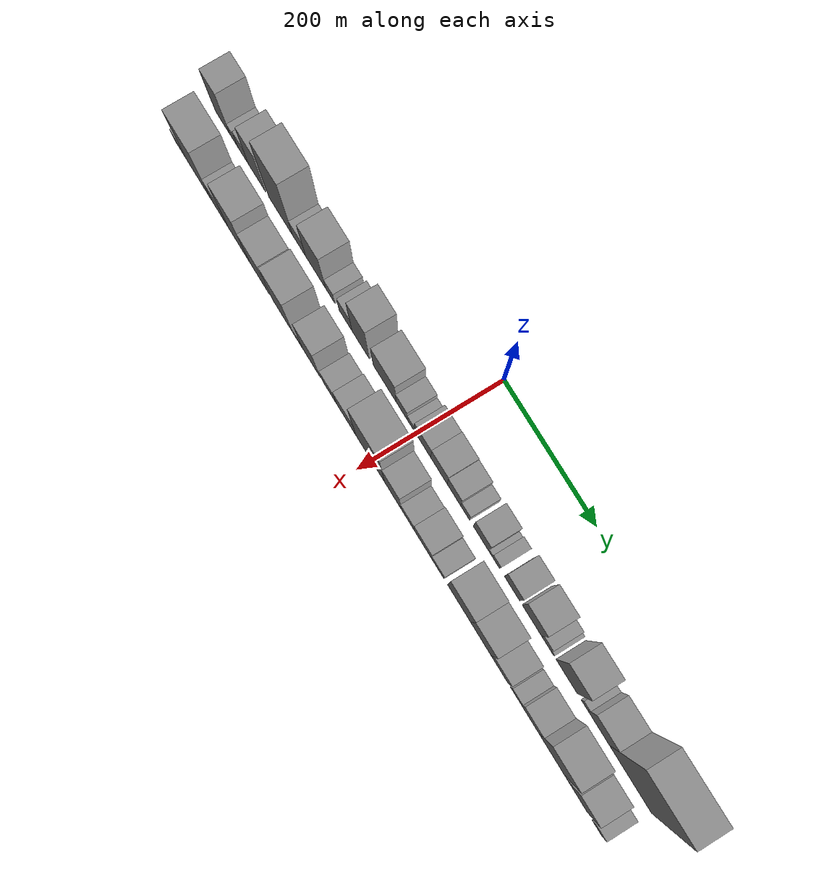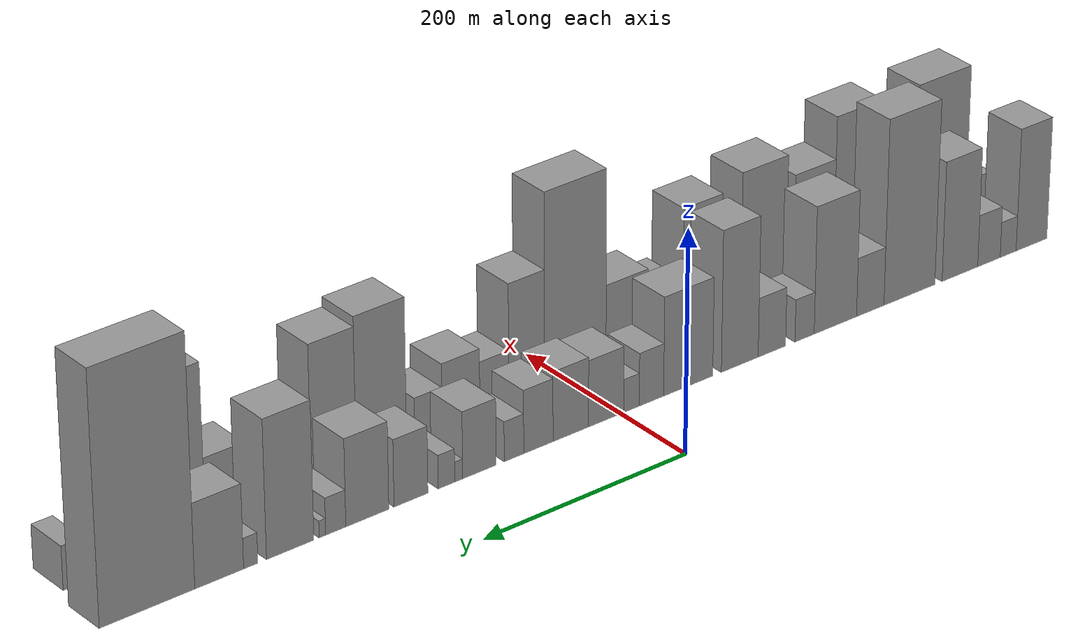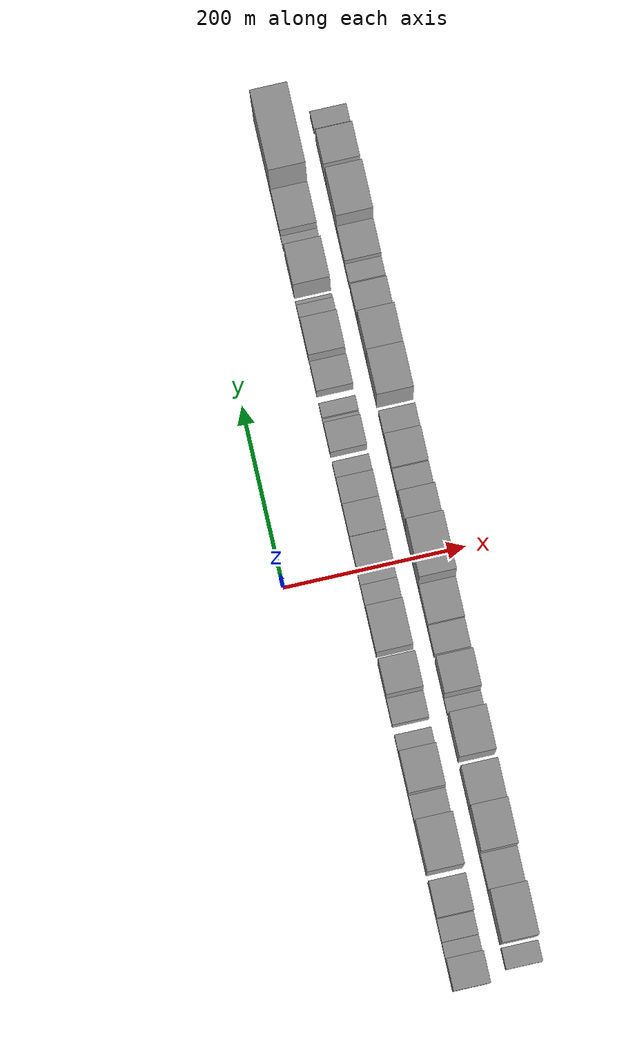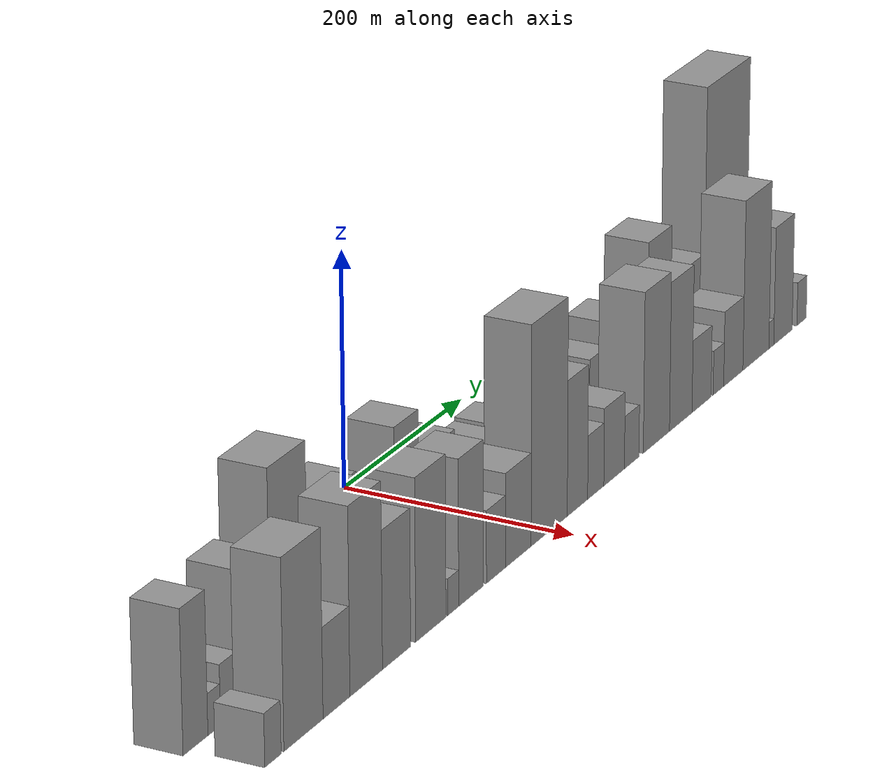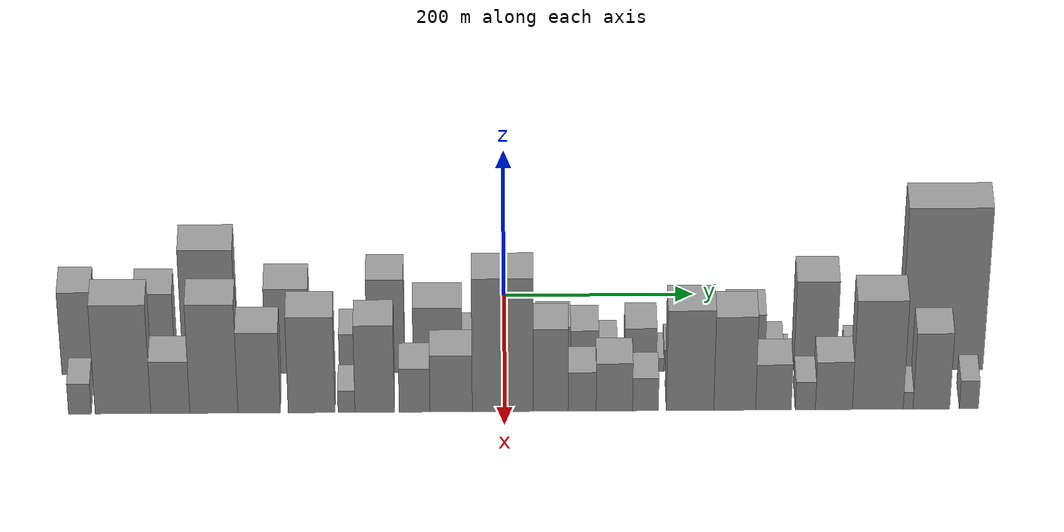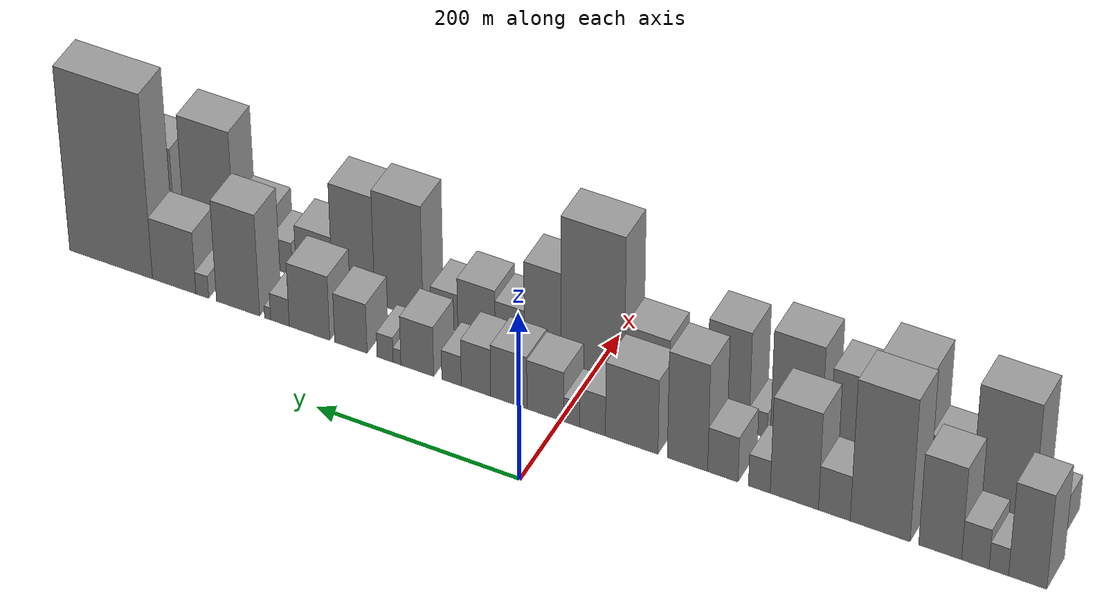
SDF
<sdf version="1.6">
 <world name="default">
  <scene>
   <sky><clouds><speed>12</speed></clouds></sky>
   <ambient>0.4 0.4 0.4 1</ambient>
   <background>0.7 0.7 0.7 1</background>
   <shadows>1</shadows>
  </scene>
  <gravity>0 0 -9.8066</gravity>
  <magnetic_field>6e-06 2.3e-05 -4.2e-05</magnetic_field>
  <physics default="0" name="default_physics" type="ode">
   <ode>
    <solver>
     <type>quick</type>
     <iters>10</iters>
     <sor>1.0</sor>
     <use_dynamic_moi_rescaling>0</use_dynamic_moi_rescaling>
    </solver>
    <constraints>
     <cfm>0</cfm>
     <erp>0.2</erp>
     <contact_max_correcting_vel>100</contact_max_correcting_vel>
     <contact_surface_layer>0.001</contact_surface_layer>
    </constraints>
   </ode>
   <max_step_size>0.004</max_step_size>
   <real_time_factor>1</real_time_factor>
   <real_time_update_rate>250</real_time_update_rate>
  </physics>
  <light name="sun" type="directional">
   <pose>0 0 10 0 0 0</pose>
   <diffuse>0.8 0.8 0.8 1</diffuse>
   <specular>0.2 0.2 0.2 1</specular>
   <attenuation>
    <range>1000</range>
    <constant>0.9</constant>
    <linear>0.01</linear>
    <quadratic>0.001</quadratic>
   </attenuation>
   <direction>-0.5 0.1 -0.9</direction>
  </light>
  <model name="building_1">
   <static>1</static>
   <pose>100.0000 -442.4921 0 0.000000 0.000000 0.000000</pose>
   <link name="link">
    <pose>0 0 57.00 0 0 0</pose>
    <collision name="collision"><geometry><box><size>40.0000 35.0159 114.0000</size></box></geometry></collision>
    <visual name="visual">
     <cast_shadows>0</cast_shadows>
     <geometry><box><size>40.0000 35.0159 114.0000</size></box></geometry>
     <material>
      <script>
       <uri>model://grey_wall/materials/scripts</uri>
       <uri>model://grey_wall/materials/textures</uri>
       <name>vrc/grey_wall</name>
      </script>
     </material>
    </visual>
   </link>
  </model>
  <model name="building_2">
   <static>1</static>
   <pose>100.0000 -415.9962 0 0.000000 0.000000 0.000000</pose>
   <link name="link">
    <pose>0 0 16.50 0 0 0</pose>
    <collision name="collision"><geometry><box><size>40.0000 17.9758 33.0000</size></box></geometry></collision>
    <visual name="visual">
     <cast_shadows>0</cast_shadows>
     <geometry><box><size>40.0000 17.9758 33.0000</size></box></geometry>
     <material>
      <script>
       <uri>model://grey_wall/materials/scripts</uri>
       <uri>model://grey_wall/materials/textures</uri>
       <name>vrc/grey_wall</name>
      </script>
     </material>
    </visual>
   </link>
  </model>
  <model name="building_3">
   <static>1</static>
   <pose>100.0000 -394.3339 0 0.000000 0.000000 0.000000</pose>
   <link name="link">
    <pose>0 0 24.00 0 0 0</pose>
    <collision name="collision"><geometry><box><size>40.0000 25.3489 48.0000</size></box></geometry></collision>
    <visual name="visual">
     <cast_shadows>0</cast_shadows>
     <geometry><box><size>40.0000 25.3489 48.0000</size></box></geometry>
     <material>
      <script>
       <uri>model://grey_wall/materials/scripts</uri>
       <uri>model://grey_wall/materials/textures</uri>
       <name>vrc/grey_wall</name>
      </script>
     </material>
    </visual>
   </link>
  </model>
  <model name="building_4">
   <static>1</static>
   <pose>100.0000 -361.7612 0 0.000000 0.000000 0.000000</pose>
   <link name="link">
    <pose>0 0 55.50 0 0 0</pose>
    <collision name="collision"><geometry><box><size>40.0000 39.7965 111.0000</size></box></geometry></collision>
    <visual name="visual">
     <cast_shadows>0</cast_shadows>
     <geometry><box><size>40.0000 39.7965 111.0000</size></box></geometry>
     <material>
      <script>
       <uri>model://grey_wall/materials/scripts</uri>
       <uri>model://grey_wall/materials/textures</uri>
       <name>vrc/grey_wall</name>
      </script>
     </material>
    </visual>
   </link>
  </model>
  <model name="building_5">
   <static>1</static>
   <pose>100.0000 -305.8351 0 0.000000 0.000000 0.000000</pose>
   <link name="link">
    <pose>0 0 85.50 0 0 0</pose>
    <collision name="collision"><geometry><box><size>40.0000 56.0557 171.0000</size></box></geometry></collision>
    <visual name="visual">
     <cast_shadows>0</cast_shadows>
     <geometry><box><size>40.0000 56.0557 171.0000</size></box></geometry>
     <material>
      <script>
       <uri>model://grey_wall/materials/scripts</uri>
       <uri>model://grey_wall/materials/textures</uri>
       <name>vrc/grey_wall</name>
      </script>
     </material>
    </visual>
   </link>
  </model>
  <model name="building_6">
   <static>1</static>
   <pose>100.0000 -262.8489 0 0.000000 0.000000 0.000000</pose>
   <link name="link">
    <pose>0 0 27.00 0 0 0</pose>
    <collision name="collision"><geometry><box><size>40.0000 29.9166 54.0000</size></box></geometry></collision>
    <visual name="visual">
     <cast_shadows>0</cast_shadows>
     <geometry><box><size>40.0000 29.9166 54.0000</size></box></geometry>
     <material>
      <script>
       <uri>model://grey_wall/materials/scripts</uri>
       <uri>model://grey_wall/materials/textures</uri>
       <name>vrc/grey_wall</name>
      </script>
     </material>
    </visual>
   </link>
  </model>
  <model name="building_7">
   <static>1</static>
   <pose>100.0000 -225.0278 0 0.000000 0.000000 0.000000</pose>
   <link name="link">
    <pose>0 0 58.50 0 0 0</pose>
    <collision name="collision"><geometry><box><size>40.0000 45.7256 117.0000</size></box></geometry></collision>
    <visual name="visual">
     <cast_shadows>0</cast_shadows>
     <geometry><box><size>40.0000 45.7256 117.0000</size></box></geometry>
     <material>
      <script>
       <uri>model://grey_wall/materials/scripts</uri>
       <uri>model://grey_wall/materials/textures</uri>
       <name>vrc/grey_wall</name>
      </script>
     </material>
    </visual>
   </link>
  </model>
  <model name="building_8">
   <static>1</static>
   <pose>100.0000 -191.8669 0 0.000000 0.000000 0.000000</pose>
   <link name="link">
    <pose>0 0 19.50 0 0 0</pose>
    <collision name="collision"><geometry><box><size>40.0000 20.5964 39.0000</size></box></geometry></collision>
    <visual name="visual">
     <cast_shadows>0</cast_shadows>
     <geometry><box><size>40.0000 20.5964 39.0000</size></box></geometry>
     <material>
      <script>
       <uri>model://grey_wall/materials/scripts</uri>
       <uri>model://grey_wall/materials/textures</uri>
       <name>vrc/grey_wall</name>
      </script>
     </material>
    </visual>
   </link>
  </model>
  <model name="building_9">
   <static>1</static>
   <pose>100.0000 -157.0296 0 0.000000 0.000000 0.000000</pose>
   <link name="link">
    <pose>0 0 27.00 0 0 0</pose>
    <collision name="collision"><geometry><box><size>40.0000 29.0781 54.0000</size></box></geometry></collision>
    <visual name="visual">
     <cast_shadows>0</cast_shadows>
     <geometry><box><size>40.0000 29.0781 54.0000</size></box></geometry>
     <material>
      <script>
       <uri>model://grey_wall/materials/scripts</uri>
       <uri>model://grey_wall/materials/textures</uri>
       <name>vrc/grey_wall</name>
      </script>
     </material>
    </visual>
   </link>
  </model>
  <model name="building_10">
   <static>1</static>
   <pose>100.0000 -123.1138 0 0.000000 0.000000 0.000000</pose>
   <link name="link">
    <pose>0 0 64.50 0 0 0</pose>
    <collision name="collision"><geometry><box><size>40.0000 38.7536 129.0000</size></box></geometry></collision>
    <visual name="visual">
     <cast_shadows>0</cast_shadows>
     <geometry><box><size>40.0000 38.7536 129.0000</size></box></geometry>
     <material>
      <script>
       <uri>model://grey_wall/materials/scripts</uri>
       <uri>model://grey_wall/materials/textures</uri>
       <name>vrc/grey_wall</name>
      </script>
     </material>
    </visual>
   </link>
  </model>
  <model name="building_11">
   <static>1</static>
   <pose>100.0000 -69.2807 0 0.000000 0.000000 0.000000</pose>
   <link name="link">
    <pose>0 0 45.00 0 0 0</pose>
    <collision name="collision"><geometry><box><size>40.0000 50.9125 90.0000</size></box></geometry></collision>
    <visual name="visual">
     <cast_shadows>0</cast_shadows>
     <geometry><box><size>40.0000 50.9125 90.0000</size></box></geometry>
     <material>
      <script>
       <uri>model://grey_wall/materials/scripts</uri>
       <uri>model://grey_wall/materials/textures</uri>
       <name>vrc/grey_wall</name>
      </script>
     </material>
    </visual>
   </link>
  </model>
  <model name="building_12">
   <static>1</static>
   <pose>100.0000 -31.2938 0 0.000000 0.000000 0.000000</pose>
   <link name="link">
    <pose>0 0 24.00 0 0 0</pose>
    <collision name="collision"><geometry><box><size>40.0000 25.0613 48.0000</size></box></geometry></collision>
    <visual name="visual">
     <cast_shadows>0</cast_shadows>
     <geometry><box><size>40.0000 25.0613 48.0000</size></box></geometry>
     <material>
      <script>
       <uri>model://grey_wall/materials/scripts</uri>
       <uri>model://grey_wall/materials/textures</uri>
       <name>vrc/grey_wall</name>
      </script>
     </material>
    </visual>
   </link>
  </model>
  <model name="building_13">
   <static>1</static>
   <pose>100.0000 -10.8633 0 0.000000 0.000000 0.000000</pose>
   <link name="link">
    <pose>0 0 15.00 0 0 0</pose>
    <collision name="collision"><geometry><box><size>40.0000 15.7997 30.0000</size></box></geometry></collision>
    <visual name="visual">
     <cast_shadows>0</cast_shadows>
     <geometry><box><size>40.0000 15.7997 30.0000</size></box></geometry>
     <material>
      <script>
       <uri>model://grey_wall/materials/scripts</uri>
       <uri>model://grey_wall/materials/textures</uri>
       <name>vrc/grey_wall</name>
      </script>
     </material>
    </visual>
   </link>
  </model>
  <model name="building_14">
   <static>1</static>
   <pose>100.0000 14.9833 0 0.000000 0.000000 0.000000</pose>
   <link name="link">
    <pose>0 0 30.00 0 0 0</pose>
    <collision name="collision"><geometry><box><size>40.0000 35.8934 60.0000</size></box></geometry></collision>
    <visual name="visual">
     <cast_shadows>0</cast_shadows>
     <geometry><box><size>40.0000 35.8934 60.0000</size></box></geometry>
     <material>
      <script>
       <uri>model://grey_wall/materials/scripts</uri>
       <uri>model://grey_wall/materials/textures</uri>
       <name>vrc/grey_wall</name>
      </script>
     </material>
    </visual>
   </link>
  </model>
  <model name="building_15">
   <static>1</static>
   <pose>100.0000 50.7926 0 0.000000 0.000000 0.000000</pose>
   <link name="link">
    <pose>0 0 31.50 0 0 0</pose>
    <collision name="collision"><geometry><box><size>40.0000 35.7253 63.0000</size></box></geometry></collision>
    <visual name="visual">
     <cast_shadows>0</cast_shadows>
     <geometry><box><size>40.0000 35.7253 63.0000</size></box></geometry>
     <material>
      <script>
       <uri>model://grey_wall/materials/scripts</uri>
       <uri>model://grey_wall/materials/textures</uri>
       <name>vrc/grey_wall</name>
      </script>
     </material>
    </visual>
   </link>
  </model>
  <model name="building_16">
   <static>1</static>
   <pose>100.0000 83.2587 0 0.000000 0.000000 0.000000</pose>
   <link name="link">
    <pose>0 0 28.50 0 0 0</pose>
    <collision name="collision"><geometry><box><size>40.0000 29.2071 57.0000</size></box></geometry></collision>
    <visual name="visual">
     <cast_shadows>0</cast_shadows>
     <geometry><box><size>40.0000 29.2071 57.0000</size></box></geometry>
     <material>
      <script>
       <uri>model://grey_wall/materials/scripts</uri>
       <uri>model://grey_wall/materials/textures</uri>
       <name>vrc/grey_wall</name>
      </script>
     </material>
    </visual>
   </link>
  </model>
  <model name="building_17">
   <static>1</static>
   <pose>100.0000 107.5433 0 0.000000 0.000000 0.000000</pose>
   <link name="link">
    <pose>0 0 18.00 0 0 0</pose>
    <collision name="collision"><geometry><box><size>40.0000 19.3620 36.0000</size></box></geometry></collision>
    <visual name="visual">
     <cast_shadows>0</cast_shadows>
     <geometry><box><size>40.0000 19.3620 36.0000</size></box></geometry>
     <material>
      <script>
       <uri>model://grey_wall/materials/scripts</uri>
       <uri>model://grey_wall/materials/textures</uri>
       <name>vrc/grey_wall</name>
      </script>
     </material>
    </visual>
   </link>
  </model>
  <model name="building_18">
   <static>1</static>
   <pose>100.0000 141.6739 0 0.000000 0.000000 0.000000</pose>
   <link name="link">
    <pose>0 0 30.00 0 0 0</pose>
    <collision name="collision"><geometry><box><size>40.0000 32.8991 60.0000</size></box></geometry></collision>
    <visual name="visual">
     <cast_shadows>0</cast_shadows>
     <geometry><box><size>40.0000 32.8991 60.0000</size></box></geometry>
     <material>
      <script>
       <uri>model://grey_wall/materials/scripts</uri>
       <uri>model://grey_wall/materials/textures</uri>
       <name>vrc/grey_wall</name>
      </script>
     </material>
    </visual>
   </link>
  </model>
  <model name="building_19">
   <static>1</static>
   <pose>100.0000 161.9813 0 0.000000 0.000000 0.000000</pose>
   <link name="link">
    <pose>0 0 9.00 0 0 0</pose>
    <collision name="collision"><geometry><box><size>40.0000 7.7157 18.0000</size></box></geometry></collision>
    <visual name="visual">
     <cast_shadows>0</cast_shadows>
     <geometry><box><size>40.0000 7.7157 18.0000</size></box></geometry>
     <material>
      <script>
       <uri>model://grey_wall/materials/scripts</uri>
       <uri>model://grey_wall/materials/textures</uri>
       <name>vrc/grey_wall</name>
      </script>
     </material>
    </visual>
   </link>
  </model>
  <model name="building_20">
   <static>1</static>
   <pose>100.0000 173.8858 0 0.000000 0.000000 0.000000</pose>
   <link name="link">
    <pose>0 0 15.00 0 0 0</pose>
    <collision name="collision"><geometry><box><size>40.0000 16.0933 30.0000</size></box></geometry></collision>
    <visual name="visual">
     <cast_shadows>0</cast_shadows>
     <geometry><box><size>40.0000 16.0933 30.0000</size></box></geometry>
     <material>
      <script>
       <uri>model://grey_wall/materials/scripts</uri>
       <uri>model://grey_wall/materials/textures</uri>
       <name>vrc/grey_wall</name>
      </script>
     </material>
    </visual>
   </link>
  </model>
  <model name="building_21">
   <static>1</static>
   <pose>100.0000 208.2888 0 0.000000 0.000000 0.000000</pose>
   <link name="link">
    <pose>0 0 30.00 0 0 0</pose>
    <collision name="collision"><geometry><box><size>40.0000 32.7128 60.0000</size></box></geometry></collision>
    <visual name="visual">
     <cast_shadows>0</cast_shadows>
     <geometry><box><size>40.0000 32.7128 60.0000</size></box></geometry>
     <material>
      <script>
       <uri>model://grey_wall/materials/scripts</uri>
       <uri>model://grey_wall/materials/textures</uri>
       <name>vrc/grey_wall</name>
      </script>
     </material>
    </visual>
   </link>
  </model>
  <model name="building_22">
   <static>1</static>
   <pose>100.0000 250.1986 0 0.000000 0.000000 0.000000</pose>
   <link name="link">
    <pose>0 0 39.00 0 0 0</pose>
    <collision name="collision"><geometry><box><size>40.0000 41.1067 78.0000</size></box></geometry></collision>
    <visual name="visual">
     <cast_shadows>0</cast_shadows>
     <geometry><box><size>40.0000 41.1067 78.0000</size></box></geometry>
     <material>
      <script>
       <uri>model://grey_wall/materials/scripts</uri>
       <uri>model://grey_wall/materials/textures</uri>
       <name>vrc/grey_wall</name>
      </script>
     </material>
    </visual>
   </link>
  </model>
  <model name="building_23">
   <static>1</static>
   <pose>100.0000 280.2710 0 0.000000 0.000000 0.000000</pose>
   <link name="link">
    <pose>0 0 16.50 0 0 0</pose>
    <collision name="collision"><geometry><box><size>40.0000 19.0381 33.0000</size></box></geometry></collision>
    <visual name="visual">
     <cast_shadows>0</cast_shadows>
     <geometry><box><size>40.0000 19.0381 33.0000</size></box></geometry>
     <material>
      <script>
       <uri>model://grey_wall/materials/scripts</uri>
       <uri>model://grey_wall/materials/textures</uri>
       <name>vrc/grey_wall</name>
      </script>
     </material>
    </visual>
   </link>
  </model>
  <model name="building_24">
   <static>1</static>
   <pose>100.0000 292.8816 0 0.000000 0.000000 0.000000</pose>
   <link name="link">
    <pose>0 0 7.50 0 0 0</pose>
    <collision name="collision"><geometry><box><size>40.0000 6.1832 15.0000</size></box></geometry></collision>
    <visual name="visual">
     <cast_shadows>0</cast_shadows>
     <geometry><box><size>40.0000 6.1832 15.0000</size></box></geometry>
     <material>
      <script>
       <uri>model://grey_wall/materials/scripts</uri>
       <uri>model://grey_wall/materials/textures</uri>
       <name>vrc/grey_wall</name>
      </script>
     </material>
    </visual>
   </link>
  </model>
  <model name="building_25">
   <static>1</static>
   <pose>100.0000 323.1472 0 0.000000 0.000000 0.000000</pose>
   <link name="link">
    <pose>0 0 61.50 0 0 0</pose>
    <collision name="collision"><geometry><box><size>40.0000 44.3479 123.0000</size></box></geometry></collision>
    <visual name="visual">
     <cast_shadows>0</cast_shadows>
     <geometry><box><size>40.0000 44.3479 123.0000</size></box></geometry>
     <material>
      <script>
       <uri>model://grey_wall/materials/scripts</uri>
       <uri>model://grey_wall/materials/textures</uri>
       <name>vrc/grey_wall</name>
      </script>
     </material>
    </visual>
   </link>
  </model>
  <model name="building_26">
   <static>1</static>
   <pose>100.0000 359.9304 0 0.000000 0.000000 0.000000</pose>
   <link name="link">
    <pose>0 0 13.50 0 0 0</pose>
    <collision name="collision"><geometry><box><size>40.0000 13.2186 27.0000</size></box></geometry></collision>
    <visual name="visual">
     <cast_shadows>0</cast_shadows>
     <geometry><box><size>40.0000 13.2186 27.0000</size></box></geometry>
     <material>
      <script>
       <uri>model://grey_wall/materials/scripts</uri>
       <uri>model://grey_wall/materials/textures</uri>
       <name>vrc/grey_wall</name>
      </script>
     </material>
    </visual>
   </link>
  </model>
  <model name="building_27">
   <static>1</static>
   <pose>100.0000 388.9986 0 0.000000 0.000000 0.000000</pose>
   <link name="link">
    <pose>0 0 37.50 0 0 0</pose>
    <collision name="collision"><geometry><box><size>40.0000 44.9178 75.0000</size></box></geometry></collision>
    <visual name="visual">
     <cast_shadows>0</cast_shadows>
     <geometry><box><size>40.0000 44.9178 75.0000</size></box></geometry>
     <material>
      <script>
       <uri>model://grey_wall/materials/scripts</uri>
       <uri>model://grey_wall/materials/textures</uri>
       <name>vrc/grey_wall</name>
      </script>
     </material>
    </visual>
   </link>
  </model>
  <model name="building_28">
   <static>1</static>
   <pose>100.0000 454.6570 0 0.000000 0.000000 0.000000</pose>
   <link name="link">
    <pose>0 0 111.00 0 0 0</pose>
    <collision name="collision"><geometry><box><size>40.0000 86.3990 222.0000</size></box></geometry></collision>
    <visual name="visual">
     <cast_shadows>0</cast_shadows>
     <geometry><box><size>40.0000 86.3990 222.0000</size></box></geometry>
     <material>
      <script>
       <uri>model://grey_wall/materials/scripts</uri>
       <uri>model://grey_wall/materials/textures</uri>
       <name>vrc/grey_wall</name>
      </script>
     </material>
    </visual>
   </link>
  </model>
  <model name="building_29">
   <static>1</static>
   <pose>160.0000 -438.2643 0 0.000000 0.000000 0.000000</pose>
   <link name="link">
    <pose>0 0 21.00 0 0 0</pose>
    <collision name="collision"><geometry><box><size>40.0000 23.4714 42.0000</size></box></geometry></collision>
    <visual name="visual">
     <cast_shadows>0</cast_shadows>
     <geometry><box><size>40.0000 23.4714 42.0000</size></box></geometry>
     <material>
      <script>
       <uri>model://grey_wall/materials/scripts</uri>
       <uri>model://grey_wall/materials/textures</uri>
       <name>vrc/grey_wall</name>
      </script>
     </material>
    </visual>
   </link>
  </model>
  <model name="building_30">
   <static>1</static>
   <pose>160.0000 -393.8523 0 0.000000 0.000000 0.000000</pose>
   <link name="link">
    <pose>0 0 75.00 0 0 0</pose>
    <collision name="collision"><geometry><box><size>40.0000 57.3526 150.0000</size></box></geometry></collision>
    <visual name="visual">
     <cast_shadows>0</cast_shadows>
     <geometry><box><size>40.0000 57.3526 150.0000</size></box></geometry>
     <material>
      <script>
       <uri>model://grey_wall/materials/scripts</uri>
       <uri>model://grey_wall/materials/textures</uri>
       <name>vrc/grey_wall</name>
      </script>
     </material>
    </visual>
   </link>
  </model>
  <model name="building_31">
   <static>1</static>
   <pose>160.0000 -345.0676 0 0.000000 0.000000 0.000000</pose>
   <link name="link">
    <pose>0 0 36.00 0 0 0</pose>
    <collision name="collision"><geometry><box><size>40.0000 40.2168 72.0000</size></box></geometry></collision>
    <visual name="visual">
     <cast_shadows>0</cast_shadows>
     <geometry><box><size>40.0000 40.2168 72.0000</size></box></geometry>
     <material>
      <script>
       <uri>model://grey_wall/materials/scripts</uri>
       <uri>model://grey_wall/materials/textures</uri>
       <name>vrc/grey_wall</name>
      </script>
     </material>
    </visual>
   </link>
  </model>
  <model name="building_32">
   <static>1</static>
   <pose>160.0000 -300.0983 0 0.000000 0.000000 0.000000</pose>
   <link name="link">
    <pose>0 0 75.00 0 0 0</pose>
    <collision name="collision"><geometry><box><size>40.0000 49.7218 150.0000</size></box></geometry></collision>
    <visual name="visual">
     <cast_shadows>0</cast_shadows>
     <geometry><box><size>40.0000 49.7218 150.0000</size></box></geometry>
     <material>
      <script>
       <uri>model://grey_wall/materials/scripts</uri>
       <uri>model://grey_wall/materials/textures</uri>
       <name>vrc/grey_wall</name>
      </script>
     </material>
    </visual>
   </link>
  </model>
  <model name="building_33">
   <static>1</static>
   <pose>160.0000 -253.3515 0 0.000000 0.000000 0.000000</pose>
   <link name="link">
    <pose>0 0 55.50 0 0 0</pose>
    <collision name="collision"><geometry><box><size>40.0000 43.7718 111.0000</size></box></geometry></collision>
    <visual name="visual">
     <cast_shadows>0</cast_shadows>
     <geometry><box><size>40.0000 43.7718 111.0000</size></box></geometry>
     <material>
      <script>
       <uri>model://grey_wall/materials/scripts</uri>
       <uri>model://grey_wall/materials/textures</uri>
       <name>vrc/grey_wall</name>
      </script>
     </material>
    </visual>
   </link>
  </model>
  <model name="building_34">
   <static>1</static>
   <pose>160.0000 -199.2547 0 0.000000 0.000000 0.000000</pose>
   <link name="link">
    <pose>0 0 66.00 0 0 0</pose>
    <collision name="collision"><geometry><box><size>40.0000 48.4219 132.0000</size></box></geometry></collision>
    <visual name="visual">
     <cast_shadows>0</cast_shadows>
     <geometry><box><size>40.0000 48.4219 132.0000</size></box></geometry>
     <material>
      <script>
       <uri>model://grey_wall/materials/scripts</uri>
       <uri>model://grey_wall/materials/textures</uri>
       <name>vrc/grey_wall</name>
      </script>
     </material>
    </visual>
   </link>
  </model>
  <model name="building_35">
   <static>1</static>
   <pose>160.0000 -163.2991 0 0.000000 0.000000 0.000000</pose>
   <link name="link">
    <pose>0 0 15.00 0 0 0</pose>
    <collision name="collision"><geometry><box><size>40.0000 17.4894 30.0000</size></box></geometry></collision>
    <visual name="visual">
     <cast_shadows>0</cast_shadows>
     <geometry><box><size>40.0000 17.4894 30.0000</size></box></geometry>
     <material>
      <script>
       <uri>model://grey_wall/materials/scripts</uri>
       <uri>model://grey_wall/materials/textures</uri>
       <name>vrc/grey_wall</name>
      </script>
     </material>
    </visual>
   </link>
  </model>
  <model name="building_36">
   <static>1</static>
   <pose>160.0000 -134.2270 0 0.000000 0.000000 0.000000</pose>
   <link name="link">
    <pose>0 0 60.00 0 0 0</pose>
    <collision name="collision"><geometry><box><size>40.0000 40.6548 120.0000</size></box></geometry></collision>
    <visual name="visual">
     <cast_shadows>0</cast_shadows>
     <geometry><box><size>40.0000 40.6548 120.0000</size></box></geometry>
     <material>
      <script>
       <uri>model://grey_wall/materials/scripts</uri>
       <uri>model://grey_wall/materials/textures</uri>
       <name>vrc/grey_wall</name>
      </script>
     </material>
    </visual>
   </link>
  </model>
  <model name="building_37">
   <static>1</static>
   <pose>160.0000 -93.0131 0 0.000000 0.000000 0.000000</pose>
   <link name="link">
    <pose>0 0 30.00 0 0 0</pose>
    <collision name="collision"><geometry><box><size>40.0000 31.7730 60.0000</size></box></geometry></collision>
    <visual name="visual">
     <cast_shadows>0</cast_shadows>
     <geometry><box><size>40.0000 31.7730 60.0000</size></box></geometry>
     <material>
      <script>
       <uri>model://grey_wall/materials/scripts</uri>
       <uri>model://grey_wall/materials/textures</uri>
       <name>vrc/grey_wall</name>
      </script>
     </material>
    </visual>
   </link>
  </model>
  <model name="building_38">
   <static>1</static>
   <pose>160.0000 -55.3704 0 0.000000 0.000000 0.000000</pose>
   <link name="link">
    <pose>0 0 39.00 0 0 0</pose>
    <collision name="collision"><geometry><box><size>40.0000 43.5125 78.0000</size></box></geometry></collision>
    <visual name="visual">
     <cast_shadows>0</cast_shadows>
     <geometry><box><size>40.0000 43.5125 78.0000</size></box></geometry>
     <material>
      <script>
       <uri>model://grey_wall/materials/scripts</uri>
       <uri>model://grey_wall/materials/textures</uri>
       <name>vrc/grey_wall</name>
      </script>
     </material>
    </visual>
   </link>
  </model>
  <model name="building_39">
   <static>1</static>
   <pose>160.0000 -2.2198 0 0.000000 0.000000 0.000000</pose>
   <link name="link">
    <pose>0 0 91.50 0 0 0</pose>
    <collision name="collision"><geometry><box><size>40.0000 62.7887 183.0000</size></box></geometry></collision>
    <visual name="visual">
     <cast_shadows>0</cast_shadows>
     <geometry><box><size>40.0000 62.7887 183.0000</size></box></geometry>
     <material>
      <script>
       <uri>model://grey_wall/materials/scripts</uri>
       <uri>model://grey_wall/materials/textures</uri>
       <name>vrc/grey_wall</name>
      </script>
     </material>
    </visual>
   </link>
  </model>
  <model name="building_40">
   <static>1</static>
   <pose>160.0000 47.2035 0 0.000000 0.000000 0.000000</pose>
   <link name="link">
    <pose>0 0 57.00 0 0 0</pose>
    <collision name="collision"><geometry><box><size>40.0000 36.0578 114.0000</size></box></geometry></collision>
    <visual name="visual">
     <cast_shadows>0</cast_shadows>
     <geometry><box><size>40.0000 36.0578 114.0000</size></box></geometry>
     <material>
      <script>
       <uri>model://grey_wall/materials/scripts</uri>
       <uri>model://grey_wall/materials/textures</uri>
       <name>vrc/grey_wall</name>
      </script>
     </material>
    </visual>
   </link>
  </model>
  <model name="building_41">
   <static>1</static>
   <pose>160.0000 79.7289 0 0.000000 0.000000 0.000000</pose>
   <link name="link">
    <pose>0 0 27.00 0 0 0</pose>
    <collision name="collision"><geometry><box><size>40.0000 28.9931 54.0000</size></box></geometry></collision>
    <visual name="visual">
     <cast_shadows>0</cast_shadows>
     <geometry><box><size>40.0000 28.9931 54.0000</size></box></geometry>
     <material>
      <script>
       <uri>model://grey_wall/materials/scripts</uri>
       <uri>model://grey_wall/materials/textures</uri>
       <name>vrc/grey_wall</name>
      </script>
     </material>
    </visual>
   </link>
  </model>
  <model name="building_42">
   <static>1</static>
   <pose>160.0000 113.0043 0 0.000000 0.000000 0.000000</pose>
   <link name="link">
    <pose>0 0 33.00 0 0 0</pose>
    <collision name="collision"><geometry><box><size>40.0000 37.5576 66.0000</size></box></geometry></collision>
    <visual name="visual">
     <cast_shadows>0</cast_shadows>
     <geometry><box><size>40.0000 37.5576 66.0000</size></box></geometry>
     <material>
      <script>
       <uri>model://grey_wall/materials/scripts</uri>
       <uri>model://grey_wall/materials/textures</uri>
       <name>vrc/grey_wall</name>
      </script>
     </material>
    </visual>
   </link>
  </model>
  <model name="building_43">
   <static>1</static>
   <pose>160.0000 145.1996 0 0.000000 0.000000 0.000000</pose>
   <link name="link">
    <pose>0 0 22.50 0 0 0</pose>
    <collision name="collision"><geometry><box><size>40.0000 26.8331 45.0000</size></box></geometry></collision>
    <visual name="visual">
     <cast_shadows>0</cast_shadows>
     <geometry><box><size>40.0000 26.8331 45.0000</size></box></geometry>
     <material>
      <script>
       <uri>model://grey_wall/materials/scripts</uri>
       <uri>model://grey_wall/materials/textures</uri>
       <name>vrc/grey_wall</name>
      </script>
     </material>
    </visual>
   </link>
  </model>
  <model name="building_44">
   <static>1</static>
   <pose>160.0000 191.1403 0 0.000000 0.000000 0.000000</pose>
   <link name="link">
    <pose>0 0 69.00 0 0 0</pose>
    <collision name="collision"><geometry><box><size>40.0000 49.0483 138.0000</size></box></geometry></collision>
    <visual name="visual">
     <cast_shadows>0</cast_shadows>
     <geometry><box><size>40.0000 49.0483 138.0000</size></box></geometry>
     <material>
      <script>
       <uri>model://grey_wall/materials/scripts</uri>
       <uri>model://grey_wall/materials/textures</uri>
       <name>vrc/grey_wall</name>
      </script>
     </material>
    </visual>
   </link>
  </model>
  <model name="building_45">
   <static>1</static>
   <pose>160.0000 237.2423 0 0.000000 0.000000 0.000000</pose>
   <link name="link">
    <pose>0 0 64.50 0 0 0</pose>
    <collision name="collision"><geometry><box><size>40.0000 43.1557 129.0000</size></box></geometry></collision>
    <visual name="visual">
     <cast_shadows>0</cast_shadows>
     <geometry><box><size>40.0000 43.1557 129.0000</size></box></geometry>
     <material>
      <script>
       <uri>model://grey_wall/materials/scripts</uri>
       <uri>model://grey_wall/materials/textures</uri>
       <name>vrc/grey_wall</name>
      </script>
     </material>
    </visual>
   </link>
  </model>
  <model name="building_46">
   <static>1</static>
   <pose>160.0000 277.3222 0 0.000000 0.000000 0.000000</pose>
   <link name="link">
    <pose>0 0 31.50 0 0 0</pose>
    <collision name="collision"><geometry><box><size>40.0000 37.0041 63.0000</size></box></geometry></collision>
    <visual name="visual">
     <cast_shadows>0</cast_shadows>
     <geometry><box><size>40.0000 37.0041 63.0000</size></box></geometry>
     <material>
      <script>
       <uri>model://grey_wall/materials/scripts</uri>
       <uri>model://grey_wall/materials/textures</uri>
       <name>vrc/grey_wall</name>
      </script>
     </material>
    </visual>
   </link>
  </model>
  <model name="building_47">
   <static>1</static>
   <pose>160.0000 310.2127 0 0.000000 0.000000 0.000000</pose>
   <link name="link">
    <pose>0 0 19.50 0 0 0</pose>
    <collision name="collision"><geometry><box><size>40.0000 20.7770 39.0000</size></box></geometry></collision>
    <visual name="visual">
     <cast_shadows>0</cast_shadows>
     <geometry><box><size>40.0000 20.7770 39.0000</size></box></geometry>
     <material>
      <script>
       <uri>model://grey_wall/materials/scripts</uri>
       <uri>model://grey_wall/materials/textures</uri>
       <name>vrc/grey_wall</name>
      </script>
     </material>
    </visual>
   </link>
  </model>
  <model name="building_48">
   <static>1</static>
   <pose>160.0000 339.6943 0 0.000000 0.000000 0.000000</pose>
   <link name="link">
    <pose>0 0 33.00 0 0 0</pose>
    <collision name="collision"><geometry><box><size>40.0000 38.1860 66.0000</size></box></geometry></collision>
    <visual name="visual">
     <cast_shadows>0</cast_shadows>
     <geometry><box><size>40.0000 38.1860 66.0000</size></box></geometry>
     <material>
      <script>
       <uri>model://grey_wall/materials/scripts</uri>
       <uri>model://grey_wall/materials/textures</uri>
       <name>vrc/grey_wall</name>
      </script>
     </material>
    </visual>
   </link>
  </model>
  <model name="building_49">
   <static>1</static>
   <pose>160.0000 385.0892 0 0.000000 0.000000 0.000000</pose>
   <link name="link">
    <pose>0 0 75.00 0 0 0</pose>
    <collision name="collision"><geometry><box><size>40.0000 52.6038 150.0000</size></box></geometry></collision>
    <visual name="visual">
     <cast_shadows>0</cast_shadows>
     <geometry><box><size>40.0000 52.6038 150.0000</size></box></geometry>
     <material>
      <script>
       <uri>model://grey_wall/materials/scripts</uri>
       <uri>model://grey_wall/materials/textures</uri>
       <name>vrc/grey_wall</name>
      </script>
     </material>
    </visual>
   </link>
  </model>
  <model name="building_50">
   <static>1</static>
   <pose>160.0000 416.4055 0 0.000000 0.000000 0.000000</pose>
   <link name="link">
    <pose>0 0 12.00 0 0 0</pose>
    <collision name="collision"><geometry><box><size>40.0000 10.0289 24.0000</size></box></geometry></collision>
    <visual name="visual">
     <cast_shadows>0</cast_shadows>
     <geometry><box><size>40.0000 10.0289 24.0000</size></box></geometry>
     <material>
      <script>
       <uri>model://grey_wall/materials/scripts</uri>
       <uri>model://grey_wall/materials/textures</uri>
       <name>vrc/grey_wall</name>
      </script>
     </material>
    </visual>
   </link>
  </model>
  <model name="building_51">
   <static>1</static>
   <pose>160.0000 440.4095 0 0.000000 0.000000 0.000000</pose>
   <link name="link">
    <pose>0 0 52.50 0 0 0</pose>
    <collision name="collision"><geometry><box><size>40.0000 37.9792 105.0000</size></box></geometry></collision>
    <visual name="visual">
     <cast_shadows>0</cast_shadows>
     <geometry><box><size>40.0000 37.9792 105.0000</size></box></geometry>
     <material>
      <script>
       <uri>model://grey_wall/materials/scripts</uri>
       <uri>model://grey_wall/materials/textures</uri>
       <name>vrc/grey_wall</name>
      </script>
     </material>
    </visual>
   </link>
  </model>
  <model name="building_52">
   <static>1</static>
   <pose>160.0000 479.2420 0 0.000000 0.000000 0.000000</pose>
   <link name="link">
    <pose>0 0 19.50 0 0 0</pose>
    <collision name="collision"><geometry><box><size>40.0000 19.6858 39.0000</size></box></geometry></collision>
    <visual name="visual">
     <cast_shadows>0</cast_shadows>
     <geometry><box><size>40.0000 19.6858 39.0000</size></box></geometry>
     <material>
      <script>
       <uri>model://grey_wall/materials/scripts</uri>
       <uri>model://grey_wall/materials/textures</uri>
       <name>vrc/grey_wall</name>
      </script>
     </material>
    </visual>
   </link>
  </model>
 </world>
</sdf>
